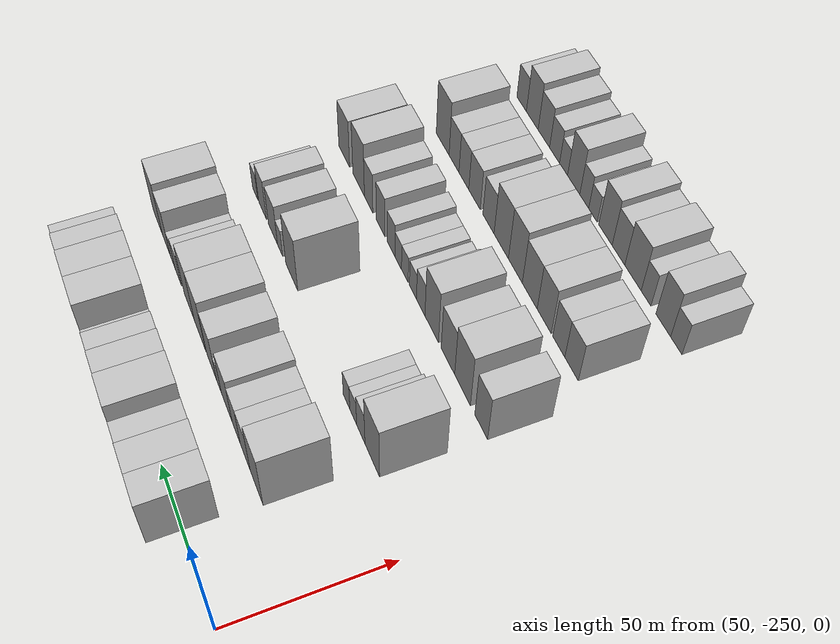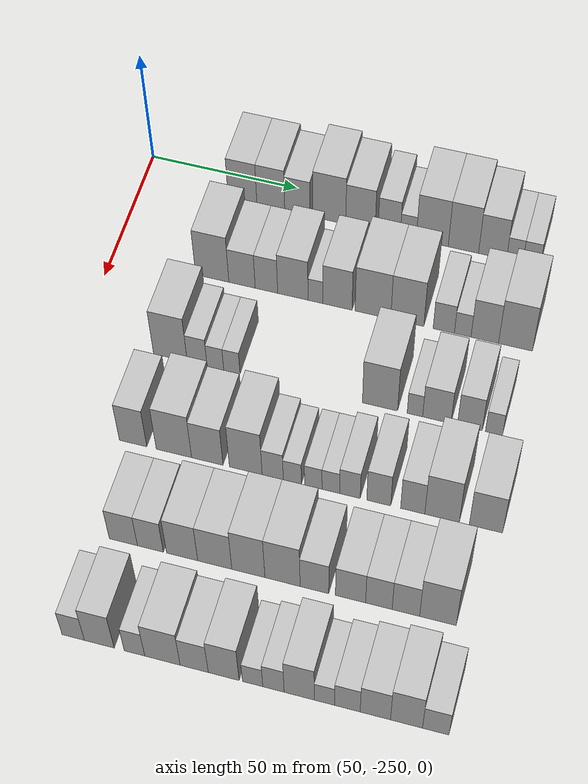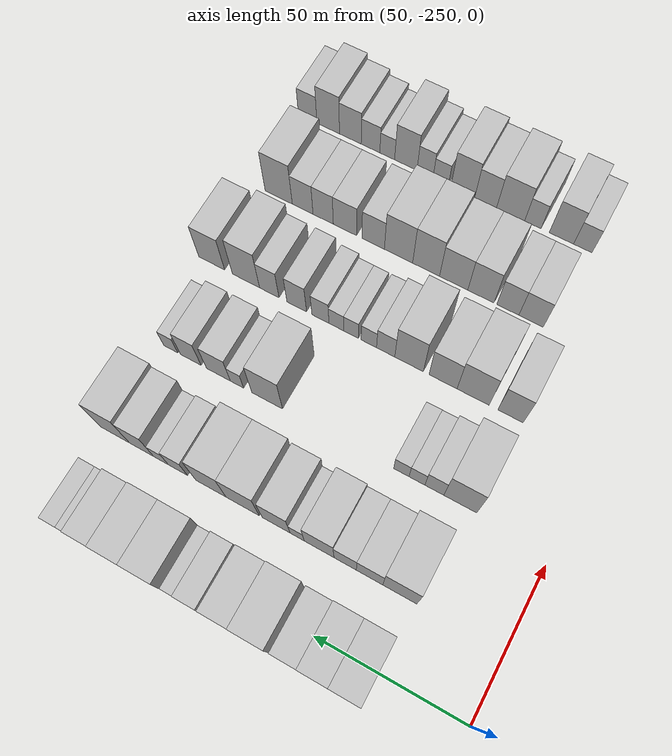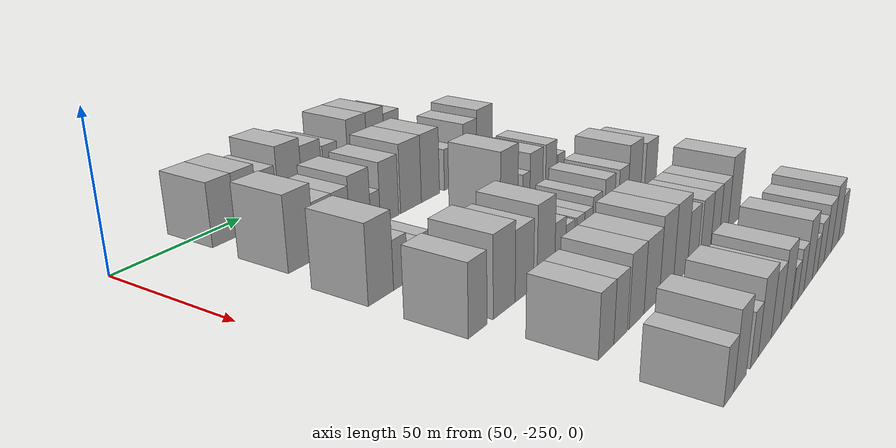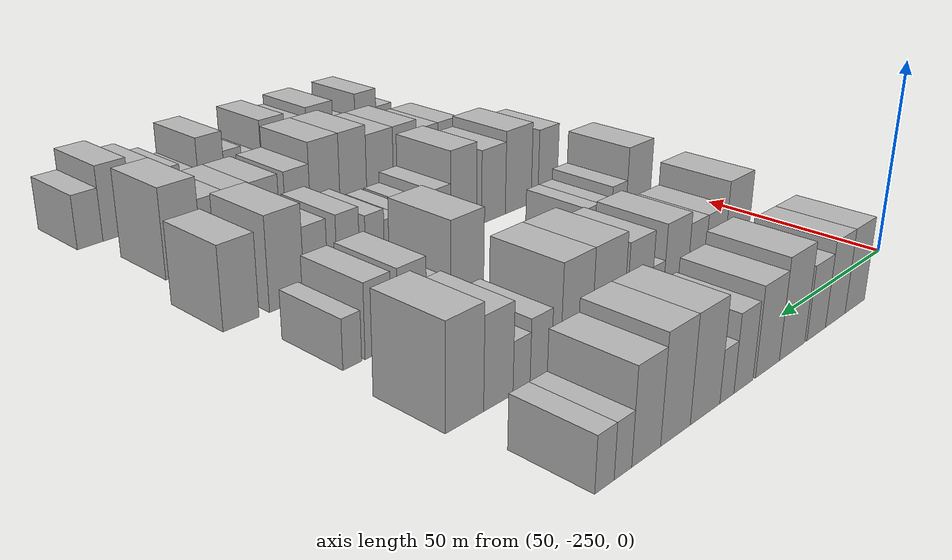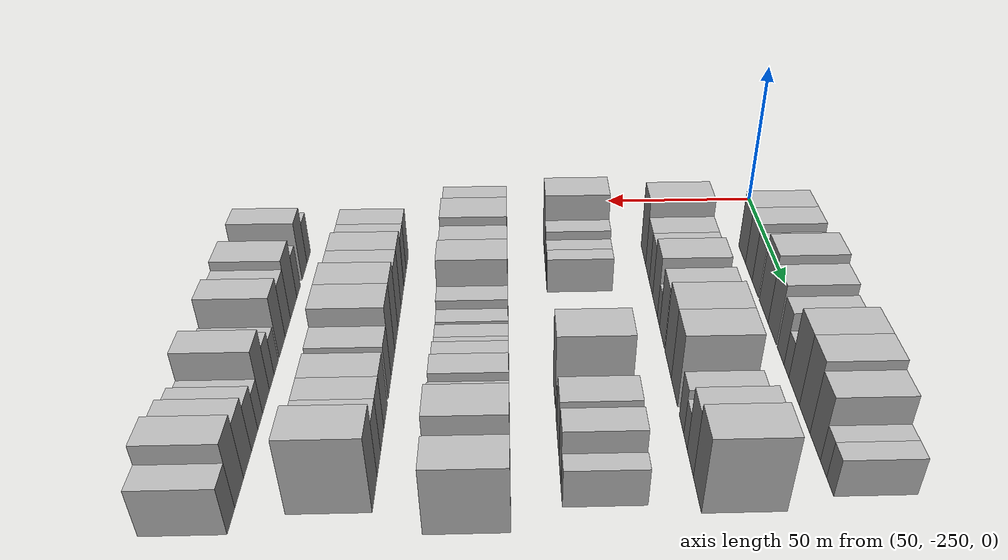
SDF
<sdf version="1.6">
 <world name="default">
  <model name="building_38">
   <static>1</static>
   <pose>50.0000 -215.8094 0 0.000000 0.000000 0.000000</pose>
   <link name="link">
    <pose>0 0 10.50 0 0 0</pose>
    <collision name="collision"><geometry><box><size>20.0000 9.8707 21.0000</size></box></geometry></collision>
    <visual name="visual">
     <cast_shadows>0</cast_shadows>
     <geometry><box><size>20.0000 9.8707 21.0000</size></box></geometry>
     <material>
      <script>
       <uri>model://HANNAS_wall/materials/scripts</uri>
       <uri>model://HANNAS_wall/materials/textures</uri>
       <name>vrc/HANNAS_wall</name>
      </script>
     </material>
    </visual>
   </link>
  </model>
  <model name="building_39">
   <static>1</static>
   <pose>50.0000 -206.1048 0 0.000000 0.000000 0.000000</pose>
   <link name="link">
    <pose>0 0 10.50 0 0 0</pose>
    <collision name="collision"><geometry><box><size>20.0000 9.5386 21.0000</size></box></geometry></collision>
    <visual name="visual">
     <cast_shadows>0</cast_shadows>
     <geometry><box><size>20.0000 9.5386 21.0000</size></box></geometry>
     <material>
      <script>
       <uri>model://HANNAS_wall/materials/scripts</uri>
       <uri>model://HANNAS_wall/materials/textures</uri>
       <name>vrc/HANNAS_wall</name>
      </script>
     </material>
    </visual>
   </link>
  </model>
  <model name="building_40">
   <static>1</static>
   <pose>50.0000 -197.0414 0 0.000000 0.000000 0.000000</pose>
   <link name="link">
    <pose>0 0 9.00 0 0 0</pose>
    <collision name="collision"><geometry><box><size>20.0000 8.5883 18.0000</size></box></geometry></collision>
    <visual name="visual">
     <cast_shadows>0</cast_shadows>
     <geometry><box><size>20.0000 8.5883 18.0000</size></box></geometry>
     <material>
      <script>
       <uri>model://HANNAS_wall/materials/scripts</uri>
       <uri>model://HANNAS_wall/materials/textures</uri>
       <name>vrc/HANNAS_wall</name>
      </script>
     </material>
    </visual>
   </link>
  </model>
  <model name="building_41">
   <static>1</static>
   <pose>50.0000 -186.1750 0 0.000000 0.000000 0.000000</pose>
   <link name="link">
    <pose>0 0 12.00 0 0 0</pose>
    <collision name="collision"><geometry><box><size>20.0000 11.1445 24.0000</size></box></geometry></collision>
    <visual name="visual">
     <cast_shadows>0</cast_shadows>
     <geometry><box><size>20.0000 11.1445 24.0000</size></box></geometry>
     <material>
      <script>
       <uri>model://HANNAS_wall/materials/scripts</uri>
       <uri>model://HANNAS_wall/materials/textures</uri>
       <name>vrc/HANNAS_wall</name>
      </script>
     </material>
    </visual>
   </link>
  </model>
  <model name="building_42">
   <static>1</static>
   <pose>50.0000 -175.6610 0 0.000000 0.000000 0.000000</pose>
   <link name="link">
    <pose>0 0 10.50 0 0 0</pose>
    <collision name="collision"><geometry><box><size>20.0000 9.8835 21.0000</size></box></geometry></collision>
    <visual name="visual">
     <cast_shadows>0</cast_shadows>
     <geometry><box><size>20.0000 9.8835 21.0000</size></box></geometry>
     <material>
      <script>
       <uri>model://HANNAS_wall/materials/scripts</uri>
       <uri>model://HANNAS_wall/materials/textures</uri>
       <name>vrc/HANNAS_wall</name>
      </script>
     </material>
    </visual>
   </link>
  </model>
  <model name="building_43">
   <static>1</static>
   <pose>50.0000 -165.9902 0 0.000000 0.000000 0.000000</pose>
   <link name="link">
    <pose>0 0 9.00 0 0 0</pose>
    <collision name="collision"><geometry><box><size>20.0000 7.4580 18.0000</size></box></geometry></collision>
    <visual name="visual">
     <cast_shadows>0</cast_shadows>
     <geometry><box><size>20.0000 7.4580 18.0000</size></box></geometry>
     <material>
      <script>
       <uri>model://HANNAS_wall/materials/scripts</uri>
       <uri>model://HANNAS_wall/materials/textures</uri>
       <name>vrc/HANNAS_wall</name>
      </script>
     </material>
    </visual>
   </link>
  </model>
  <model name="building_44">
   <static>1</static>
   <pose>50.0000 -159.6006 0 0.000000 0.000000 0.000000</pose>
   <link name="link">
    <pose>0 0 6.00 0 0 0</pose>
    <collision name="collision"><geometry><box><size>20.0000 5.3212 12.0000</size></box></geometry></collision>
    <visual name="visual">
     <cast_shadows>0</cast_shadows>
     <geometry><box><size>20.0000 5.3212 12.0000</size></box></geometry>
     <material>
      <script>
       <uri>model://HANNAS_wall/materials/scripts</uri>
       <uri>model://HANNAS_wall/materials/textures</uri>
       <name>vrc/HANNAS_wall</name>
      </script>
     </material>
    </visual>
   </link>
  </model>
  <model name="building_45">
   <static>1</static>
   <pose>50.0000 -151.6141 0 0.000000 0.000000 0.000000</pose>
   <link name="link">
    <pose>0 0 12.00 0 0 0</pose>
    <collision name="collision"><geometry><box><size>20.0000 10.6518 24.0000</size></box></geometry></collision>
    <visual name="visual">
     <cast_shadows>0</cast_shadows>
     <geometry><box><size>20.0000 10.6518 24.0000</size></box></geometry>
     <material>
      <script>
       <uri>model://HANNAS_wall/materials/scripts</uri>
       <uri>model://HANNAS_wall/materials/textures</uri>
       <name>vrc/HANNAS_wall</name>
      </script>
     </material>
    </visual>
   </link>
  </model>
  <model name="building_46">
   <static>1</static>
   <pose>50.0000 -141.2624 0 0.000000 0.000000 0.000000</pose>
   <link name="link">
    <pose>0 0 12.00 0 0 0</pose>
    <collision name="collision"><geometry><box><size>20.0000 10.0516 24.0000</size></box></geometry></collision>
    <visual name="visual">
     <cast_shadows>0</cast_shadows>
     <geometry><box><size>20.0000 10.0516 24.0000</size></box></geometry>
     <material>
      <script>
       <uri>model://HANNAS_wall/materials/scripts</uri>
       <uri>model://HANNAS_wall/materials/textures</uri>
       <name>vrc/HANNAS_wall</name>
      </script>
     </material>
    </visual>
   </link>
  </model>
  <model name="building_47">
   <static>1</static>
   <pose>50.0000 -131.6291 0 0.000000 0.000000 0.000000</pose>
   <link name="link">
    <pose>0 0 10.50 0 0 0</pose>
    <collision name="collision"><geometry><box><size>20.0000 9.2149 21.0000</size></box></geometry></collision>
    <visual name="visual">
     <cast_shadows>0</cast_shadows>
     <geometry><box><size>20.0000 9.2149 21.0000</size></box></geometry>
     <material>
      <script>
       <uri>model://HANNAS_wall/materials/scripts</uri>
       <uri>model://HANNAS_wall/materials/textures</uri>
       <name>vrc/HANNAS_wall</name>
      </script>
     </material>
    </visual>
   </link>
  </model>
  <model name="building_48">
   <static>1</static>
   <pose>50.0000 -124.3506 0 0.000000 0.000000 0.000000</pose>
   <link name="link">
    <pose>0 0 6.00 0 0 0</pose>
    <collision name="collision"><geometry><box><size>20.0000 5.3422 12.0000</size></box></geometry></collision>
    <visual name="visual">
     <cast_shadows>0</cast_shadows>
     <geometry><box><size>20.0000 5.3422 12.0000</size></box></geometry>
     <material>
      <script>
       <uri>model://HANNAS_wall/materials/scripts</uri>
       <uri>model://HANNAS_wall/materials/textures</uri>
       <name>vrc/HANNAS_wall</name>
      </script>
     </material>
    </visual>
   </link>
  </model>
  <model name="building_49">
   <static>1</static>
   <pose>50.0000 -118.8210 0 0.000000 0.000000 0.000000</pose>
   <link name="link">
    <pose>0 0 6.00 0 0 0</pose>
    <collision name="collision"><geometry><box><size>20.0000 5.7169 12.0000</size></box></geometry></collision>
    <visual name="visual">
     <cast_shadows>0</cast_shadows>
     <geometry><box><size>20.0000 5.7169 12.0000</size></box></geometry>
     <material>
      <script>
       <uri>model://HANNAS_wall/materials/scripts</uri>
       <uri>model://HANNAS_wall/materials/textures</uri>
       <name>vrc/HANNAS_wall</name>
      </script>
     </material>
    </visual>
   </link>
  </model>
  <model name="building_159">
   <static>1</static>
   <pose>82.0000 -216.3499 0 0.000000 0.000000 0.000000</pose>
   <link name="link">
    <pose>0 0 12.00 0 0 0</pose>
    <collision name="collision"><geometry><box><size>20.0000 11.1395 24.0000</size></box></geometry></collision>
    <visual name="visual">
     <cast_shadows>0</cast_shadows>
     <geometry><box><size>20.0000 11.1395 24.0000</size></box></geometry>
     <material>
      <script>
       <uri>model://HANNAS_wall/materials/scripts</uri>
       <uri>model://HANNAS_wall/materials/textures</uri>
       <name>vrc/HANNAS_wall</name>
      </script>
     </material>
    </visual>
   </link>
  </model>
  <model name="building_160">
   <static>1</static>
   <pose>82.0000 -206.3992 0 0.000000 0.000000 0.000000</pose>
   <link name="link">
    <pose>0 0 9.00 0 0 0</pose>
    <collision name="collision"><geometry><box><size>20.0000 8.7619 18.0000</size></box></geometry></collision>
    <visual name="visual">
     <cast_shadows>0</cast_shadows>
     <geometry><box><size>20.0000 8.7619 18.0000</size></box></geometry>
     <material>
      <script>
       <uri>model://HANNAS_wall/materials/scripts</uri>
       <uri>model://HANNAS_wall/materials/textures</uri>
       <name>vrc/HANNAS_wall</name>
      </script>
     </material>
    </visual>
   </link>
  </model>
  <model name="building_161">
   <static>1</static>
   <pose>82.0000 -198.2860 0 0.000000 0.000000 0.000000</pose>
   <link name="link">
    <pose>0 0 9.00 0 0 0</pose>
    <collision name="collision"><geometry><box><size>20.0000 7.4645 18.0000</size></box></geometry></collision>
    <visual name="visual">
     <cast_shadows>0</cast_shadows>
     <geometry><box><size>20.0000 7.4645 18.0000</size></box></geometry>
     <material>
      <script>
       <uri>model://HANNAS_wall/materials/scripts</uri>
       <uri>model://HANNAS_wall/materials/textures</uri>
       <name>vrc/HANNAS_wall</name>
      </script>
     </material>
    </visual>
   </link>
  </model>
  <model name="building_162">
   <static>1</static>
   <pose>82.0000 -189.5212 0 0.000000 0.000000 0.000000</pose>
   <link name="link">
    <pose>0 0 10.50 0 0 0</pose>
    <collision name="collision"><geometry><box><size>20.0000 10.0651 21.0000</size></box></geometry></collision>
    <visual name="visual">
     <cast_shadows>0</cast_shadows>
     <geometry><box><size>20.0000 10.0651 21.0000</size></box></geometry>
     <material>
      <script>
       <uri>model://HANNAS_wall/materials/scripts</uri>
       <uri>model://HANNAS_wall/materials/textures</uri>
       <name>vrc/HANNAS_wall</name>
      </script>
     </material>
    </visual>
   </link>
  </model>
  <model name="building_163">
   <static>1</static>
   <pose>82.0000 -182.0866 0 0.000000 0.000000 0.000000</pose>
   <link name="link">
    <pose>0 0 6.00 0 0 0</pose>
    <collision name="collision"><geometry><box><size>20.0000 4.8041 12.0000</size></box></geometry></collision>
    <visual name="visual">
     <cast_shadows>0</cast_shadows>
     <geometry><box><size>20.0000 4.8041 12.0000</size></box></geometry>
     <material>
      <script>
       <uri>model://HANNAS_wall/materials/scripts</uri>
       <uri>model://HANNAS_wall/materials/textures</uri>
       <name>vrc/HANNAS_wall</name>
      </script>
     </material>
    </visual>
   </link>
  </model>
  <model name="building_164">
   <static>1</static>
   <pose>82.0000 -174.8684 0 0.000000 0.000000 0.000000</pose>
   <link name="link">
    <pose>0 0 10.50 0 0 0</pose>
    <collision name="collision"><geometry><box><size>20.0000 9.6324 21.0000</size></box></geometry></collision>
    <visual name="visual">
     <cast_shadows>0</cast_shadows>
     <geometry><box><size>20.0000 9.6324 21.0000</size></box></geometry>
     <material>
      <script>
       <uri>model://HANNAS_wall/materials/scripts</uri>
       <uri>model://HANNAS_wall/materials/textures</uri>
       <name>vrc/HANNAS_wall</name>
      </script>
     </material>
    </visual>
   </link>
  </model>
  <model name="building_165">
   <static>1</static>
   <pose>82.0000 -163.2336 0 0.000000 0.000000 0.000000</pose>
   <link name="link">
    <pose>0 0 12.00 0 0 0</pose>
    <collision name="collision"><geometry><box><size>20.0000 11.6372 24.0000</size></box></geometry></collision>
    <visual name="visual">
     <cast_shadows>0</cast_shadows>
     <geometry><box><size>20.0000 11.6372 24.0000</size></box></geometry>
     <material>
      <script>
       <uri>model://HANNAS_wall/materials/scripts</uri>
       <uri>model://HANNAS_wall/materials/textures</uri>
       <name>vrc/HANNAS_wall</name>
      </script>
     </material>
    </visual>
   </link>
  </model>
  <model name="building_166">
   <static>1</static>
   <pose>82.0000 -152.0554 0 0.000000 0.000000 0.000000</pose>
   <link name="link">
    <pose>0 0 12.00 0 0 0</pose>
    <collision name="collision"><geometry><box><size>20.0000 10.7192 24.0000</size></box></geometry></collision>
    <visual name="visual">
     <cast_shadows>0</cast_shadows>
     <geometry><box><size>20.0000 10.7192 24.0000</size></box></geometry>
     <material>
      <script>
       <uri>model://HANNAS_wall/materials/scripts</uri>
       <uri>model://HANNAS_wall/materials/textures</uri>
       <name>vrc/HANNAS_wall</name>
      </script>
     </material>
    </visual>
   </link>
  </model>
  <model name="building_167">
   <static>1</static>
   <pose>82.0000 -140.2704 0 0.000000 0.000000 0.000000</pose>
   <link name="link">
    <pose>0 0 7.50 0 0 0</pose>
    <collision name="collision"><geometry><box><size>20.0000 6.8508 15.0000</size></box></geometry></collision>
    <visual name="visual">
     <cast_shadows>0</cast_shadows>
     <geometry><box><size>20.0000 6.8508 15.0000</size></box></geometry>
     <material>
      <script>
       <uri>model://HANNAS_wall/materials/scripts</uri>
       <uri>model://HANNAS_wall/materials/textures</uri>
       <name>vrc/HANNAS_wall</name>
      </script>
     </material>
    </visual>
   </link>
  </model>
  <model name="building_168">
   <static>1</static>
   <pose>82.0000 -134.1834 0 0.000000 0.000000 0.000000</pose>
   <link name="link">
    <pose>0 0 6.00 0 0 0</pose>
    <collision name="collision"><geometry><box><size>20.0000 5.3231 12.0000</size></box></geometry></collision>
    <visual name="visual">
     <cast_shadows>0</cast_shadows>
     <geometry><box><size>20.0000 5.3231 12.0000</size></box></geometry>
     <material>
      <script>
       <uri>model://HANNAS_wall/materials/scripts</uri>
       <uri>model://HANNAS_wall/materials/textures</uri>
       <name>vrc/HANNAS_wall</name>
      </script>
     </material>
    </visual>
   </link>
  </model>
  <model name="building_169">
   <static>1</static>
   <pose>82.0000 -127.1189 0 0.000000 0.000000 0.000000</pose>
   <link name="link">
    <pose>0 0 10.50 0 0 0</pose>
    <collision name="collision"><geometry><box><size>20.0000 8.8061 21.0000</size></box></geometry></collision>
    <visual name="visual">
     <cast_shadows>0</cast_shadows>
     <geometry><box><size>20.0000 8.8061 21.0000</size></box></geometry>
     <material>
      <script>
       <uri>model://HANNAS_wall/materials/scripts</uri>
       <uri>model://HANNAS_wall/materials/textures</uri>
       <name>vrc/HANNAS_wall</name>
      </script>
     </material>
    </visual>
   </link>
  </model>
  <model name="building_170">
   <static>1</static>
   <pose>82.0000 -117.2976 0 0.000000 0.000000 0.000000</pose>
   <link name="link">
    <pose>0 0 12.00 0 0 0</pose>
    <collision name="collision"><geometry><box><size>20.0000 10.8363 24.0000</size></box></geometry></collision>
    <visual name="visual">
     <cast_shadows>0</cast_shadows>
     <geometry><box><size>20.0000 10.8363 24.0000</size></box></geometry>
     <material>
      <script>
       <uri>model://HANNAS_wall/materials/scripts</uri>
       <uri>model://HANNAS_wall/materials/textures</uri>
       <name>vrc/HANNAS_wall</name>
      </script>
     </material>
    </visual>
   </link>
  </model>
  <model name="building_274">
   <static>1</static>
   <pose>114.0000 -220.0748 0 0.000000 0.000000 0.000000</pose>
   <link name="link">
    <pose>0 0 12.00 0 0 0</pose>
    <collision name="collision"><geometry><box><size>20.0000 11.0003 24.0000</size></box></geometry></collision>
    <visual name="visual">
     <cast_shadows>0</cast_shadows>
     <geometry><box><size>20.0000 11.0003 24.0000</size></box></geometry>
     <material>
      <script>
       <uri>model://HANNAS_wall/materials/scripts</uri>
       <uri>model://HANNAS_wall/materials/textures</uri>
       <name>vrc/HANNAS_wall</name>
      </script>
     </material>
    </visual>
   </link>
  </model>
  <model name="building_275">
   <static>1</static>
   <pose>114.0000 -211.3531 0 0.000000 0.000000 0.000000</pose>
   <link name="link">
    <pose>0 0 7.50 0 0 0</pose>
    <collision name="collision"><geometry><box><size>20.0000 6.4432 15.0000</size></box></geometry></collision>
    <visual name="visual">
     <cast_shadows>0</cast_shadows>
     <geometry><box><size>20.0000 6.4432 15.0000</size></box></geometry>
     <material>
      <script>
       <uri>model://HANNAS_wall/materials/scripts</uri>
       <uri>model://HANNAS_wall/materials/textures</uri>
       <name>vrc/HANNAS_wall</name>
      </script>
     </material>
    </visual>
   </link>
  </model>
  <model name="building_276">
   <static>1</static>
   <pose>114.0000 -205.4371 0 0.000000 0.000000 0.000000</pose>
   <link name="link">
    <pose>0 0 6.00 0 0 0</pose>
    <collision name="collision"><geometry><box><size>20.0000 5.3886 12.0000</size></box></geometry></collision>
    <visual name="visual">
     <cast_shadows>0</cast_shadows>
     <geometry><box><size>20.0000 5.3886 12.0000</size></box></geometry>
     <material>
      <script>
       <uri>model://HANNAS_wall/materials/scripts</uri>
       <uri>model://HANNAS_wall/materials/textures</uri>
       <name>vrc/HANNAS_wall</name>
      </script>
     </material>
    </visual>
   </link>
  </model>
  <model name="building_277">
   <static>1</static>
   <pose>114.0000 -200.0996 0 0.000000 0.000000 0.000000</pose>
   <link name="link">
    <pose>0 0 6.00 0 0 0</pose>
    <collision name="collision"><geometry><box><size>20.0000 5.2863 12.0000</size></box></geometry></collision>
    <visual name="visual">
     <cast_shadows>0</cast_shadows>
     <geometry><box><size>20.0000 5.2863 12.0000</size></box></geometry>
     <material>
      <script>
       <uri>model://HANNAS_wall/materials/scripts</uri>
       <uri>model://HANNAS_wall/materials/textures</uri>
       <name>vrc/HANNAS_wall</name>
      </script>
     </material>
    </visual>
   </link>
  </model>
  <model name="building_278">
   <static>1</static>
   <pose>114.0000 -152.7945 0 0.000000 0.000000 0.000000</pose>
   <link name="link">
    <pose>0 0 12.00 0 0 0</pose>
    <collision name="collision"><geometry><box><size>20.0000 11.1080 24.0000</size></box></geometry></collision>
    <visual name="visual">
     <cast_shadows>0</cast_shadows>
     <geometry><box><size>20.0000 11.1080 24.0000</size></box></geometry>
     <material>
      <script>
       <uri>model://HANNAS_wall/materials/scripts</uri>
       <uri>model://HANNAS_wall/materials/textures</uri>
       <name>vrc/HANNAS_wall</name>
      </script>
     </material>
    </visual>
   </link>
  </model>
  <model name="building_279">
   <static>1</static>
   <pose>114.0000 -141.8122 0 0.000000 0.000000 0.000000</pose>
   <link name="link">
    <pose>0 0 6.00 0 0 0</pose>
    <collision name="collision"><geometry><box><size>20.0000 4.8568 12.0000</size></box></geometry></collision>
    <visual name="visual">
     <cast_shadows>0</cast_shadows>
     <geometry><box><size>20.0000 4.8568 12.0000</size></box></geometry>
     <material>
      <script>
       <uri>model://HANNAS_wall/materials/scripts</uri>
       <uri>model://HANNAS_wall/materials/textures</uri>
       <name>vrc/HANNAS_wall</name>
      </script>
     </material>
    </visual>
   </link>
  </model>
  <model name="building_280">
   <static>1</static>
   <pose>114.0000 -134.9543 0 0.000000 0.000000 0.000000</pose>
   <link name="link">
    <pose>0 0 9.00 0 0 0</pose>
    <collision name="collision"><geometry><box><size>20.0000 8.8589 18.0000</size></box></geometry></collision>
    <visual name="visual">
     <cast_shadows>0</cast_shadows>
     <geometry><box><size>20.0000 8.8589 18.0000</size></box></geometry>
     <material>
      <script>
       <uri>model://HANNAS_wall/materials/scripts</uri>
       <uri>model://HANNAS_wall/materials/textures</uri>
       <name>vrc/HANNAS_wall</name>
      </script>
     </material>
    </visual>
   </link>
  </model>
  <model name="building_281">
   <static>1</static>
   <pose>114.0000 -124.6739 0 0.000000 0.000000 0.000000</pose>
   <link name="link">
    <pose>0 0 9.00 0 0 0</pose>
    <collision name="collision"><geometry><box><size>20.0000 7.7020 18.0000</size></box></geometry></collision>
    <visual name="visual">
     <cast_shadows>0</cast_shadows>
     <geometry><box><size>20.0000 7.7020 18.0000</size></box></geometry>
     <material>
      <script>
       <uri>model://HANNAS_wall/materials/scripts</uri>
       <uri>model://HANNAS_wall/materials/textures</uri>
       <name>vrc/HANNAS_wall</name>
      </script>
     </material>
    </visual>
   </link>
  </model>
  <model name="building_282">
   <static>1</static>
   <pose>114.0000 -117.1741 0 0.000000 0.000000 0.000000</pose>
   <link name="link">
    <pose>0 0 6.00 0 0 0</pose>
    <collision name="collision"><geometry><box><size>20.0000 5.2977 12.0000</size></box></geometry></collision>
    <visual name="visual">
     <cast_shadows>0</cast_shadows>
     <geometry><box><size>20.0000 5.2977 12.0000</size></box></geometry>
     <material>
      <script>
       <uri>model://HANNAS_wall/materials/scripts</uri>
       <uri>model://HANNAS_wall/materials/textures</uri>
       <name>vrc/HANNAS_wall</name>
      </script>
     </material>
    </visual>
   </link>
  </model>
  <model name="building_395">
   <static>1</static>
   <pose>146.0000 -221.5595 0 0.000000 0.000000 0.000000</pose>
   <link name="link">
    <pose>0 0 10.50 0 0 0</pose>
    <collision name="collision"><geometry><box><size>20.0000 8.7062 21.0000</size></box></geometry></collision>
    <visual name="visual">
     <cast_shadows>0</cast_shadows>
     <geometry><box><size>20.0000 8.7062 21.0000</size></box></geometry>
     <material>
      <script>
       <uri>model://HANNAS_wall/materials/scripts</uri>
       <uri>model://HANNAS_wall/materials/textures</uri>
       <name>vrc/HANNAS_wall</name>
      </script>
     </material>
    </visual>
   </link>
  </model>
  <model name="building_396">
   <static>1</static>
   <pose>146.0000 -208.6321 0 0.000000 0.000000 0.000000</pose>
   <link name="link">
    <pose>0 0 12.00 0 0 0</pose>
    <collision name="collision"><geometry><box><size>20.0000 11.1487 24.0000</size></box></geometry></collision>
    <visual name="visual">
     <cast_shadows>0</cast_shadows>
     <geometry><box><size>20.0000 11.1487 24.0000</size></box></geometry>
     <material>
      <script>
       <uri>model://HANNAS_wall/materials/scripts</uri>
       <uri>model://HANNAS_wall/materials/textures</uri>
       <name>vrc/HANNAS_wall</name>
      </script>
     </material>
    </visual>
   </link>
  </model>
  <model name="building_397">
   <static>1</static>
   <pose>146.0000 -198.1204 0 0.000000 0.000000 0.000000</pose>
   <link name="link">
    <pose>0 0 10.50 0 0 0</pose>
    <collision name="collision"><geometry><box><size>20.0000 9.8747 21.0000</size></box></geometry></collision>
    <visual name="visual">
     <cast_shadows>0</cast_shadows>
     <geometry><box><size>20.0000 9.8747 21.0000</size></box></geometry>
     <material>
      <script>
       <uri>model://HANNAS_wall/materials/scripts</uri>
       <uri>model://HANNAS_wall/materials/textures</uri>
       <name>vrc/HANNAS_wall</name>
      </script>
     </material>
    </visual>
   </link>
  </model>
  <model name="building_398">
   <static>1</static>
   <pose>146.0000 -186.0793 0 0.000000 0.000000 0.000000</pose>
   <link name="link">
    <pose>0 0 12.00 0 0 0</pose>
    <collision name="collision"><geometry><box><size>20.0000 10.2075 24.0000</size></box></geometry></collision>
    <visual name="visual">
     <cast_shadows>0</cast_shadows>
     <geometry><box><size>20.0000 10.2075 24.0000</size></box></geometry>
     <material>
      <script>
       <uri>model://HANNAS_wall/materials/scripts</uri>
       <uri>model://HANNAS_wall/materials/textures</uri>
       <name>vrc/HANNAS_wall</name>
      </script>
     </material>
    </visual>
   </link>
  </model>
  <model name="building_399">
   <static>1</static>
   <pose>146.0000 -177.6819 0 0.000000 0.000000 0.000000</pose>
   <link name="link">
    <pose>0 0 7.50 0 0 0</pose>
    <collision name="collision"><geometry><box><size>20.0000 6.5874 15.0000</size></box></geometry></collision>
    <visual name="visual">
     <cast_shadows>0</cast_shadows>
     <geometry><box><size>20.0000 6.5874 15.0000</size></box></geometry>
     <material>
      <script>
       <uri>model://HANNAS_wall/materials/scripts</uri>
       <uri>model://HANNAS_wall/materials/textures</uri>
       <name>vrc/HANNAS_wall</name>
      </script>
     </material>
    </visual>
   </link>
  </model>
  <model name="building_400">
   <static>1</static>
   <pose>146.0000 -171.5863 0 0.000000 0.000000 0.000000</pose>
   <link name="link">
    <pose>0 0 6.00 0 0 0</pose>
    <collision name="collision"><geometry><box><size>20.0000 5.6037 12.0000</size></box></geometry></collision>
    <visual name="visual">
     <cast_shadows>0</cast_shadows>
     <geometry><box><size>20.0000 5.6037 12.0000</size></box></geometry>
     <material>
      <script>
       <uri>model://HANNAS_wall/materials/scripts</uri>
       <uri>model://HANNAS_wall/materials/textures</uri>
       <name>vrc/HANNAS_wall</name>
      </script>
     </material>
    </visual>
   </link>
  </model>
  <model name="building_401">
   <static>1</static>
   <pose>146.0000 -165.1097 0 0.000000 0.000000 0.000000</pose>
   <link name="link">
    <pose>0 0 6.00 0 0 0</pose>
    <collision name="collision"><geometry><box><size>20.0000 5.3495 12.0000</size></box></geometry></collision>
    <visual name="visual">
     <cast_shadows>0</cast_shadows>
     <geometry><box><size>20.0000 5.3495 12.0000</size></box></geometry>
     <material>
      <script>
       <uri>model://HANNAS_wall/materials/scripts</uri>
       <uri>model://HANNAS_wall/materials/textures</uri>
       <name>vrc/HANNAS_wall</name>
      </script>
     </material>
    </visual>
   </link>
  </model>
  <model name="building_402">
   <static>1</static>
   <pose>146.0000 -159.7223 0 0.000000 0.000000 0.000000</pose>
   <link name="link">
    <pose>0 0 6.00 0 0 0</pose>
    <collision name="collision"><geometry><box><size>20.0000 5.4254 12.0000</size></box></geometry></collision>
    <visual name="visual">
     <cast_shadows>0</cast_shadows>
     <geometry><box><size>20.0000 5.4254 12.0000</size></box></geometry>
     <material>
      <script>
       <uri>model://HANNAS_wall/materials/scripts</uri>
       <uri>model://HANNAS_wall/materials/textures</uri>
       <name>vrc/HANNAS_wall</name>
      </script>
     </material>
    </visual>
   </link>
  </model>
  <model name="building_403">
   <static>1</static>
   <pose>146.0000 -153.8524 0 0.000000 0.000000 0.000000</pose>
   <link name="link">
    <pose>0 0 7.50 0 0 0</pose>
    <collision name="collision"><geometry><box><size>20.0000 6.3144 15.0000</size></box></geometry></collision>
    <visual name="visual">
     <cast_shadows>0</cast_shadows>
     <geometry><box><size>20.0000 6.3144 15.0000</size></box></geometry>
     <material>
      <script>
       <uri>model://HANNAS_wall/materials/scripts</uri>
       <uri>model://HANNAS_wall/materials/textures</uri>
       <name>vrc/HANNAS_wall</name>
      </script>
     </material>
    </visual>
   </link>
  </model>
  <model name="building_404">
   <static>1</static>
   <pose>146.0000 -145.0324 0 0.000000 0.000000 0.000000</pose>
   <link name="link">
    <pose>0 0 9.00 0 0 0</pose>
    <collision name="collision"><geometry><box><size>20.0000 7.3258 18.0000</size></box></geometry></collision>
    <visual name="visual">
     <cast_shadows>0</cast_shadows>
     <geometry><box><size>20.0000 7.3258 18.0000</size></box></geometry>
     <material>
      <script>
       <uri>model://HANNAS_wall/materials/scripts</uri>
       <uri>model://HANNAS_wall/materials/textures</uri>
       <name>vrc/HANNAS_wall</name>
      </script>
     </material>
    </visual>
   </link>
  </model>
  <model name="building_405">
   <static>1</static>
   <pose>146.0000 -134.6974 0 0.000000 0.000000 0.000000</pose>
   <link name="link">
    <pose>0 0 9.00 0 0 0</pose>
    <collision name="collision"><geometry><box><size>20.0000 7.3441 18.0000</size></box></geometry></collision>
    <visual name="visual">
     <cast_shadows>0</cast_shadows>
     <geometry><box><size>20.0000 7.3441 18.0000</size></box></geometry>
     <material>
      <script>
       <uri>model://HANNAS_wall/materials/scripts</uri>
       <uri>model://HANNAS_wall/materials/textures</uri>
       <name>vrc/HANNAS_wall</name>
      </script>
     </material>
    </visual>
   </link>
  </model>
  <model name="building_406">
   <static>1</static>
   <pose>146.0000 -125.8194 0 0.000000 0.000000 0.000000</pose>
   <link name="link">
    <pose>0 0 12.00 0 0 0</pose>
    <collision name="collision"><geometry><box><size>20.0000 10.4120 24.0000</size></box></geometry></collision>
    <visual name="visual">
     <cast_shadows>0</cast_shadows>
     <geometry><box><size>20.0000 10.4120 24.0000</size></box></geometry>
     <material>
      <script>
       <uri>model://HANNAS_wall/materials/scripts</uri>
       <uri>model://HANNAS_wall/materials/textures</uri>
       <name>vrc/HANNAS_wall</name>
      </script>
     </material>
    </visual>
   </link>
  </model>
  <model name="building_407">
   <static>1</static>
   <pose>146.0000 -112.6049 0 0.000000 0.000000 0.000000</pose>
   <link name="link">
    <pose>0 0 10.50 0 0 0</pose>
    <collision name="collision"><geometry><box><size>20.0000 10.0170 21.0000</size></box></geometry></collision>
    <visual name="visual">
     <cast_shadows>0</cast_shadows>
     <geometry><box><size>20.0000 10.0170 21.0000</size></box></geometry>
     <material>
      <script>
       <uri>model://HANNAS_wall/materials/scripts</uri>
       <uri>model://HANNAS_wall/materials/textures</uri>
       <name>vrc/HANNAS_wall</name>
      </script>
     </material>
    </visual>
   </link>
  </model>
  <model name="building_511">
   <static>1</static>
   <pose>178.0000 -213.7937 0 0.000000 0.000000 0.000000</pose>
   <link name="link">
    <pose>0 0 9.00 0 0 0</pose>
    <collision name="collision"><geometry><box><size>20.0000 8.6557 18.0000</size></box></geometry></collision>
    <visual name="visual">
     <cast_shadows>0</cast_shadows>
     <geometry><box><size>20.0000 8.6557 18.0000</size></box></geometry>
     <material>
      <script>
       <uri>model://HANNAS_wall/materials/scripts</uri>
       <uri>model://HANNAS_wall/materials/textures</uri>
       <name>vrc/HANNAS_wall</name>
      </script>
     </material>
    </visual>
   </link>
  </model>
  <model name="building_512">
   <static>1</static>
   <pose>178.0000 -205.5074 0 0.000000 0.000000 0.000000</pose>
   <link name="link">
    <pose>0 0 9.00 0 0 0</pose>
    <collision name="collision"><geometry><box><size>20.0000 7.9170 18.0000</size></box></geometry></collision>
    <visual name="visual">
     <cast_shadows>0</cast_shadows>
     <geometry><box><size>20.0000 7.9170 18.0000</size></box></geometry>
     <material>
      <script>
       <uri>model://HANNAS_wall/materials/scripts</uri>
       <uri>model://HANNAS_wall/materials/textures</uri>
       <name>vrc/HANNAS_wall</name>
      </script>
     </material>
    </visual>
   </link>
  </model>
  <model name="building_513">
   <static>1</static>
   <pose>178.0000 -195.8049 0 0.000000 0.000000 0.000000</pose>
   <link name="link">
    <pose>0 0 10.50 0 0 0</pose>
    <collision name="collision"><geometry><box><size>20.0000 9.4880 21.0000</size></box></geometry></collision>
    <visual name="visual">
     <cast_shadows>0</cast_shadows>
     <geometry><box><size>20.0000 9.4880 21.0000</size></box></geometry>
     <material>
      <script>
       <uri>model://HANNAS_wall/materials/scripts</uri>
       <uri>model://HANNAS_wall/materials/textures</uri>
       <name>vrc/HANNAS_wall</name>
      </script>
     </material>
    </visual>
   </link>
  </model>
  <model name="building_514">
   <static>1</static>
   <pose>178.0000 -185.8924 0 0.000000 0.000000 0.000000</pose>
   <link name="link">
    <pose>0 0 10.50 0 0 0</pose>
    <collision name="collision"><geometry><box><size>20.0000 10.3370 21.0000</size></box></geometry></collision>
    <visual name="visual">
     <cast_shadows>0</cast_shadows>
     <geometry><box><size>20.0000 10.3370 21.0000</size></box></geometry>
     <material>
      <script>
       <uri>model://HANNAS_wall/materials/scripts</uri>
       <uri>model://HANNAS_wall/materials/textures</uri>
       <name>vrc/HANNAS_wall</name>
      </script>
     </material>
    </visual>
   </link>
  </model>
  <model name="building_515">
   <static>1</static>
   <pose>178.0000 -175.7425 0 0.000000 0.000000 0.000000</pose>
   <link name="link">
    <pose>0 0 12.00 0 0 0</pose>
    <collision name="collision"><geometry><box><size>20.0000 9.9627 24.0000</size></box></geometry></collision>
    <visual name="visual">
     <cast_shadows>0</cast_shadows>
     <geometry><box><size>20.0000 9.9627 24.0000</size></box></geometry>
     <material>
      <script>
       <uri>model://HANNAS_wall/materials/scripts</uri>
       <uri>model://HANNAS_wall/materials/textures</uri>
       <name>vrc/HANNAS_wall</name>
      </script>
     </material>
    </visual>
   </link>
  </model>
  <model name="building_516">
   <static>1</static>
   <pose>178.0000 -165.4769 0 0.000000 0.000000 0.000000</pose>
   <link name="link">
    <pose>0 0 12.00 0 0 0</pose>
    <collision name="collision"><geometry><box><size>20.0000 10.5684 24.0000</size></box></geometry></collision>
    <visual name="visual">
     <cast_shadows>0</cast_shadows>
     <geometry><box><size>20.0000 10.5684 24.0000</size></box></geometry>
     <material>
      <script>
       <uri>model://HANNAS_wall/materials/scripts</uri>
       <uri>model://HANNAS_wall/materials/textures</uri>
       <name>vrc/HANNAS_wall</name>
      </script>
     </material>
    </visual>
   </link>
  </model>
  <model name="building_517">
   <static>1</static>
   <pose>178.0000 -155.9391 0 0.000000 0.000000 0.000000</pose>
   <link name="link">
    <pose>0 0 9.00 0 0 0</pose>
    <collision name="collision"><geometry><box><size>20.0000 8.5073 18.0000</size></box></geometry></collision>
    <visual name="visual">
     <cast_shadows>0</cast_shadows>
     <geometry><box><size>20.0000 8.5073 18.0000</size></box></geometry>
     <material>
      <script>
       <uri>model://HANNAS_wall/materials/scripts</uri>
       <uri>model://HANNAS_wall/materials/textures</uri>
       <name>vrc/HANNAS_wall</name>
      </script>
     </material>
    </visual>
   </link>
  </model>
  <model name="building_518">
   <static>1</static>
   <pose>178.0000 -145.2235 0 0.000000 0.000000 0.000000</pose>
   <link name="link">
    <pose>0 0 9.00 0 0 0</pose>
    <collision name="collision"><geometry><box><size>20.0000 8.9239 18.0000</size></box></geometry></collision>
    <visual name="visual">
     <cast_shadows>0</cast_shadows>
     <geometry><box><size>20.0000 8.9239 18.0000</size></box></geometry>
     <material>
      <script>
       <uri>model://HANNAS_wall/materials/scripts</uri>
       <uri>model://HANNAS_wall/materials/textures</uri>
       <name>vrc/HANNAS_wall</name>
      </script>
     </material>
    </visual>
   </link>
  </model>
  <model name="building_519">
   <static>1</static>
   <pose>178.0000 -136.8463 0 0.000000 0.000000 0.000000</pose>
   <link name="link">
    <pose>0 0 9.00 0 0 0</pose>
    <collision name="collision"><geometry><box><size>20.0000 7.8304 18.0000</size></box></geometry></collision>
    <visual name="visual">
     <cast_shadows>0</cast_shadows>
     <geometry><box><size>20.0000 7.8304 18.0000</size></box></geometry>
     <material>
      <script>
       <uri>model://HANNAS_wall/materials/scripts</uri>
       <uri>model://HANNAS_wall/materials/textures</uri>
       <name>vrc/HANNAS_wall</name>
      </script>
     </material>
    </visual>
   </link>
  </model>
  <model name="building_520">
   <static>1</static>
   <pose>178.0000 -128.8994 0 0.000000 0.000000 0.000000</pose>
   <link name="link">
    <pose>0 0 9.00 0 0 0</pose>
    <collision name="collision"><geometry><box><size>20.0000 8.0635 18.0000</size></box></geometry></collision>
    <visual name="visual">
     <cast_shadows>0</cast_shadows>
     <geometry><box><size>20.0000 8.0635 18.0000</size></box></geometry>
     <material>
      <script>
       <uri>model://HANNAS_wall/materials/scripts</uri>
       <uri>model://HANNAS_wall/materials/textures</uri>
       <name>vrc/HANNAS_wall</name>
      </script>
     </material>
    </visual>
   </link>
  </model>
  <model name="building_521">
   <static>1</static>
   <pose>178.0000 -119.5198 0 0.000000 0.000000 0.000000</pose>
   <link name="link">
    <pose>0 0 12.00 0 0 0</pose>
    <collision name="collision"><geometry><box><size>20.0000 10.6956 24.0000</size></box></geometry></collision>
    <visual name="visual">
     <cast_shadows>0</cast_shadows>
     <geometry><box><size>20.0000 10.6956 24.0000</size></box></geometry>
     <material>
      <script>
       <uri>model://HANNAS_wall/materials/scripts</uri>
       <uri>model://HANNAS_wall/materials/textures</uri>
       <name>vrc/HANNAS_wall</name>
      </script>
     </material>
    </visual>
   </link>
  </model>
  <model name="building_627">
   <static>1</static>
   <pose>210.0000 -217.8943 0 0.000000 0.000000 0.000000</pose>
   <link name="link">
    <pose>0 0 7.50 0 0 0</pose>
    <collision name="collision"><geometry><box><size>20.0000 6.7045 15.0000</size></box></geometry></collision>
    <visual name="visual">
     <cast_shadows>0</cast_shadows>
     <geometry><box><size>20.0000 6.7045 15.0000</size></box></geometry>
     <material>
      <script>
       <uri>model://HANNAS_wall/materials/scripts</uri>
       <uri>model://HANNAS_wall/materials/textures</uri>
       <name>vrc/HANNAS_wall</name>
      </script>
     </material>
    </visual>
   </link>
  </model>
  <model name="building_628">
   <static>1</static>
   <pose>210.0000 -210.1106 0 0.000000 0.000000 0.000000</pose>
   <link name="link">
    <pose>0 0 10.50 0 0 0</pose>
    <collision name="collision"><geometry><box><size>20.0000 8.8630 21.0000</size></box></geometry></collision>
    <visual name="visual">
     <cast_shadows>0</cast_shadows>
     <geometry><box><size>20.0000 8.8630 21.0000</size></box></geometry>
     <material>
      <script>
       <uri>model://HANNAS_wall/materials/scripts</uri>
       <uri>model://HANNAS_wall/materials/textures</uri>
       <name>vrc/HANNAS_wall</name>
      </script>
     </material>
    </visual>
   </link>
  </model>
  <model name="building_629">
   <static>1</static>
   <pose>210.0000 -199.6460 0 0.000000 0.000000 0.000000</pose>
   <link name="link">
    <pose>0 0 7.50 0 0 0</pose>
    <collision name="collision"><geometry><box><size>20.0000 6.0661 15.0000</size></box></geometry></collision>
    <visual name="visual">
     <cast_shadows>0</cast_shadows>
     <geometry><box><size>20.0000 6.0661 15.0000</size></box></geometry>
     <material>
      <script>
       <uri>model://HANNAS_wall/materials/scripts</uri>
       <uri>model://HANNAS_wall/materials/textures</uri>
       <name>vrc/HANNAS_wall</name>
      </script>
     </material>
    </visual>
   </link>
  </model>
  <model name="building_630">
   <static>1</static>
   <pose>210.0000 -191.3943 0 0.000000 0.000000 0.000000</pose>
   <link name="link">
    <pose>0 0 10.50 0 0 0</pose>
    <collision name="collision"><geometry><box><size>20.0000 10.4375 21.0000</size></box></geometry></collision>
    <visual name="visual">
     <cast_shadows>0</cast_shadows>
     <geometry><box><size>20.0000 10.4375 21.0000</size></box></geometry>
     <material>
      <script>
       <uri>model://HANNAS_wall/materials/scripts</uri>
       <uri>model://HANNAS_wall/materials/textures</uri>
       <name>vrc/HANNAS_wall</name>
      </script>
     </material>
    </visual>
   </link>
  </model>
  <model name="building_631">
   <static>1</static>
   <pose>210.0000 -182.0519 0 0.000000 0.000000 0.000000</pose>
   <link name="link">
    <pose>0 0 9.00 0 0 0</pose>
    <collision name="collision"><geometry><box><size>20.0000 8.2472 18.0000</size></box></geometry></collision>
    <visual name="visual">
     <cast_shadows>0</cast_shadows>
     <geometry><box><size>20.0000 8.2472 18.0000</size></box></geometry>
     <material>
      <script>
       <uri>model://HANNAS_wall/materials/scripts</uri>
       <uri>model://HANNAS_wall/materials/textures</uri>
       <name>vrc/HANNAS_wall</name>
      </script>
     </material>
    </visual>
   </link>
  </model>
  <model name="building_632">
   <static>1</static>
   <pose>210.0000 -173.4257 0 0.000000 0.000000 0.000000</pose>
   <link name="link">
    <pose>0 0 10.50 0 0 0</pose>
    <collision name="collision"><geometry><box><size>20.0000 9.0054 21.0000</size></box></geometry></collision>
    <visual name="visual">
     <cast_shadows>0</cast_shadows>
     <geometry><box><size>20.0000 9.0054 21.0000</size></box></geometry>
     <material>
      <script>
       <uri>model://HANNAS_wall/materials/scripts</uri>
       <uri>model://HANNAS_wall/materials/textures</uri>
       <name>vrc/HANNAS_wall</name>
      </script>
     </material>
    </visual>
   </link>
  </model>
  <model name="building_633">
   <static>1</static>
   <pose>210.0000 -164.9790 0 0.000000 0.000000 0.000000</pose>
   <link name="link">
    <pose>0 0 6.00 0 0 0</pose>
    <collision name="collision"><geometry><box><size>20.0000 5.8879 12.0000</size></box></geometry></collision>
    <visual name="visual">
     <cast_shadows>0</cast_shadows>
     <geometry><box><size>20.0000 5.8879 12.0000</size></box></geometry>
     <material>
      <script>
       <uri>model://HANNAS_wall/materials/scripts</uri>
       <uri>model://HANNAS_wall/materials/textures</uri>
       <name>vrc/HANNAS_wall</name>
      </script>
     </material>
    </visual>
   </link>
  </model>
  <model name="building_634">
   <static>1</static>
   <pose>210.0000 -158.9439 0 0.000000 0.000000 0.000000</pose>
   <link name="link">
    <pose>0 0 7.50 0 0 0</pose>
    <collision name="collision"><geometry><box><size>20.0000 6.1824 15.0000</size></box></geometry></collision>
    <visual name="visual">
     <cast_shadows>0</cast_shadows>
     <geometry><box><size>20.0000 6.1824 15.0000</size></box></geometry>
     <material>
      <script>
       <uri>model://HANNAS_wall/materials/scripts</uri>
       <uri>model://HANNAS_wall/materials/textures</uri>
       <name>vrc/HANNAS_wall</name>
      </script>
     </material>
    </visual>
   </link>
  </model>
  <model name="building_635">
   <static>1</static>
   <pose>210.0000 -151.4962 0 0.000000 0.000000 0.000000</pose>
   <link name="link">
    <pose>0 0 10.50 0 0 0</pose>
    <collision name="collision"><geometry><box><size>20.0000 8.7130 21.0000</size></box></geometry></collision>
    <visual name="visual">
     <cast_shadows>0</cast_shadows>
     <geometry><box><size>20.0000 8.7130 21.0000</size></box></geometry>
     <material>
      <script>
       <uri>model://HANNAS_wall/materials/scripts</uri>
       <uri>model://HANNAS_wall/materials/textures</uri>
       <name>vrc/HANNAS_wall</name>
      </script>
     </material>
    </visual>
   </link>
  </model>
  <model name="building_636">
   <static>1</static>
   <pose>210.0000 -144.2498 0 0.000000 0.000000 0.000000</pose>
   <link name="link">
    <pose>0 0 6.00 0 0 0</pose>
    <collision name="collision"><geometry><box><size>20.0000 5.7798 12.0000</size></box></geometry></collision>
    <visual name="visual">
     <cast_shadows>0</cast_shadows>
     <geometry><box><size>20.0000 5.7798 12.0000</size></box></geometry>
     <material>
      <script>
       <uri>model://HANNAS_wall/materials/scripts</uri>
       <uri>model://HANNAS_wall/materials/textures</uri>
       <name>vrc/HANNAS_wall</name>
      </script>
     </material>
    </visual>
   </link>
  </model>
  <model name="building_637">
   <static>1</static>
   <pose>210.0000 -137.6931 0 0.000000 0.000000 0.000000</pose>
   <link name="link">
    <pose>0 0 7.50 0 0 0</pose>
    <collision name="collision"><geometry><box><size>20.0000 7.3336 15.0000</size></box></geometry></collision>
    <visual name="visual">
     <cast_shadows>0</cast_shadows>
     <geometry><box><size>20.0000 7.3336 15.0000</size></box></geometry>
     <material>
      <script>
       <uri>model://HANNAS_wall/materials/scripts</uri>
       <uri>model://HANNAS_wall/materials/textures</uri>
       <name>vrc/HANNAS_wall</name>
      </script>
     </material>
    </visual>
   </link>
  </model>
  <model name="building_638">
   <static>1</static>
   <pose>210.0000 -129.7083 0 0.000000 0.000000 0.000000</pose>
   <link name="link">
    <pose>0 0 9.00 0 0 0</pose>
    <collision name="collision"><geometry><box><size>20.0000 8.6360 18.0000</size></box></geometry></collision>
    <visual name="visual">
     <cast_shadows>0</cast_shadows>
     <geometry><box><size>20.0000 8.6360 18.0000</size></box></geometry>
     <material>
      <script>
       <uri>model://HANNAS_wall/materials/scripts</uri>
       <uri>model://HANNAS_wall/materials/textures</uri>
       <name>vrc/HANNAS_wall</name>
      </script>
     </material>
    </visual>
   </link>
  </model>
  <model name="building_639">
   <static>1</static>
   <pose>210.0000 -120.8542 0 0.000000 0.000000 0.000000</pose>
   <link name="link">
    <pose>0 0 10.50 0 0 0</pose>
    <collision name="collision"><geometry><box><size>20.0000 9.0721 21.0000</size></box></geometry></collision>
    <visual name="visual">
     <cast_shadows>0</cast_shadows>
     <geometry><box><size>20.0000 9.0721 21.0000</size></box></geometry>
     <material>
      <script>
       <uri>model://HANNAS_wall/materials/scripts</uri>
       <uri>model://HANNAS_wall/materials/textures</uri>
       <name>vrc/HANNAS_wall</name>
      </script>
     </material>
    </visual>
   </link>
  </model>
  <model name="building_640">
   <static>1</static>
   <pose>210.0000 -112.5806 0 0.000000 0.000000 0.000000</pose>
   <link name="link">
    <pose>0 0 7.50 0 0 0</pose>
    <collision name="collision"><geometry><box><size>20.0000 7.4753 15.0000</size></box></geometry></collision>
    <visual name="visual">
     <cast_shadows>0</cast_shadows>
     <geometry><box><size>20.0000 7.4753 15.0000</size></box></geometry>
     <material>
      <script>
       <uri>model://HANNAS_wall/materials/scripts</uri>
       <uri>model://HANNAS_wall/materials/textures</uri>
       <name>vrc/HANNAS_wall</name>
      </script>
     </material>
    </visual>
   </link>
  </model>
 </world>
</sdf>
